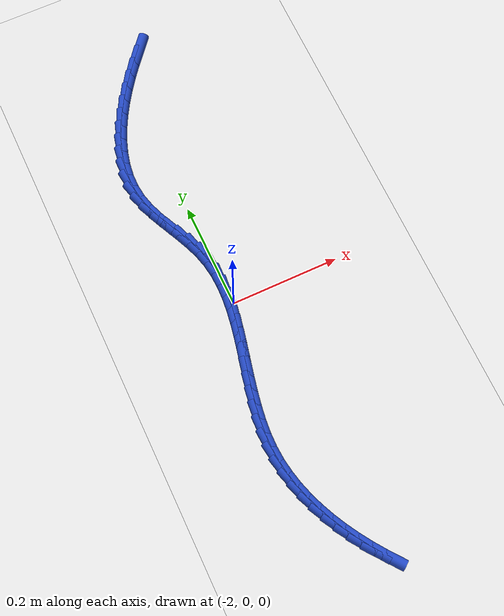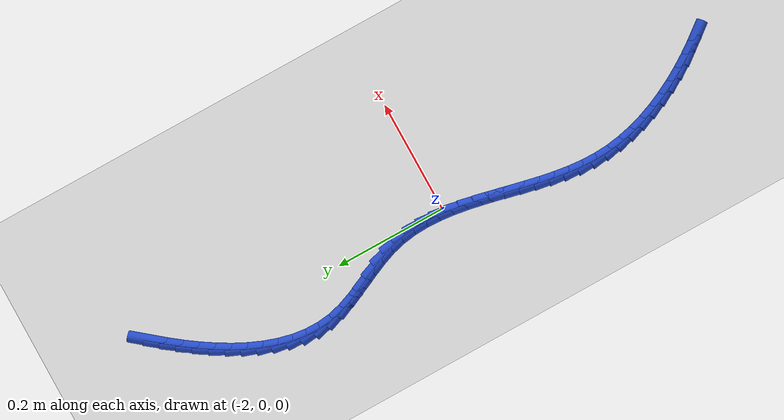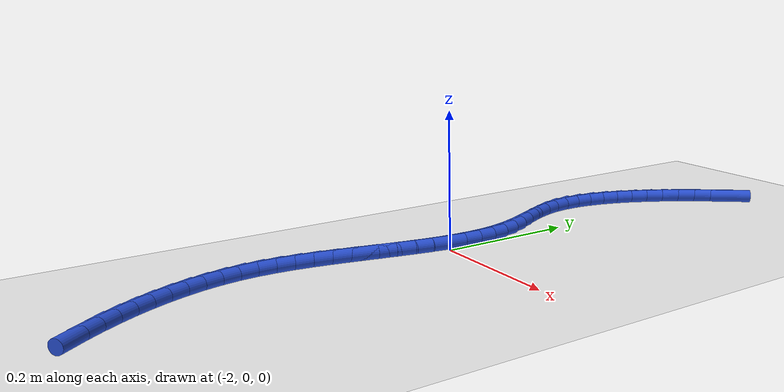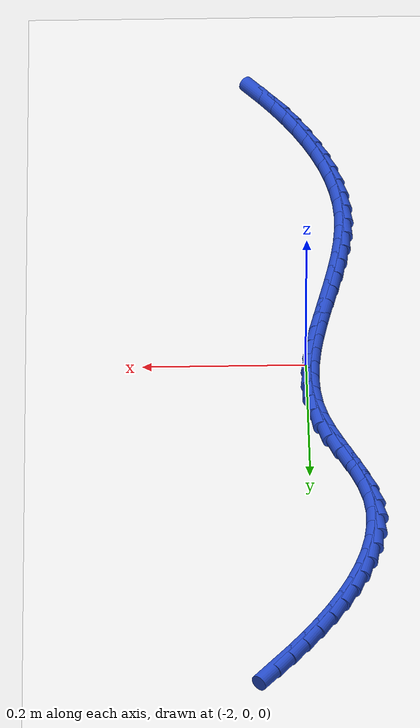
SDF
<sdf version="1.6">
 <world name="default">
  <model name="ground_plane">
   <static>1</static>
   <link name="link">
    <collision name="collision">
     <geometry><plane><normal>0 0 1</normal><size>100 100</size></plane></geometry>
     <surface><friction><ode><mu>100</mu><mu2>50</mu2></ode></friction></surface>
    </collision>
    <visual name="visual">
     <cast_shadows>0</cast_shadows>
     <geometry><plane><normal>0 0 1</normal><size>100 100</size></plane></geometry>
     <material>
      <script><uri>file://media/materials/scripts/gazebo.material</uri><name>Gazebo/WhiteGlow</name></script>
     </material>
    </visual>
   </link>
  </model>
  <model name="line">
   <link name="link_108">
    <pose>-1.9564512482983454 0.534389550413857 0.01 0 1.57 0.8852019934915449</pose>
    <collision name="collision">
     <geometry><cylinder><radius>0.01</radius><length>0.08</length></cylinder></geometry>
    </collision>
    <visual name="visual">
     <material>
      <script><name>Gazebo/Blue</name><uri>file://media/materials/scripts/gazebo.material</uri></script>
     </material>
     <geometry><cylinder><radius>0.01</radius><length>0.08</length></cylinder></geometry>
    </visual>
   </link>
   <link name="link_109">
    <pose>-1.9735837545025818 0.5134440441223386 0.01 0 1.57 0.9180072365667759</pose>
    <collision name="collision">
     <geometry><cylinder><radius>0.01</radius><length>0.08</length></cylinder></geometry>
    </collision>
    <visual name="visual">
     <material>
      <script><name>Gazebo/Blue</name><uri>file://media/materials/scripts/gazebo.material</uri></script>
     </material>
     <geometry><cylinder><radius>0.01</radius><length>0.08</length></cylinder></geometry>
    </visual>
   </link>
   <link name="link_110">
    <pose>-1.990241824545096 0.491657816225653 0.01 0 1.57 0.9555419687642975</pose>
    <collision name="collision">
     <geometry><cylinder><radius>0.01</radius><length>0.08</length></cylinder></geometry>
    </collision>
    <visual name="visual">
     <material>
      <script><name>Gazebo/Blue</name><uri>file://media/materials/scripts/gazebo.material</uri></script>
     </material>
     <geometry><cylinder><radius>0.01</radius><length>0.08</length></cylinder></geometry>
    </visual>
   </link>
   <link name="link_111">
    <pose>-2.006157741705944 0.46913854690241186 0.01 0 1.57 0.9986297483245608</pose>
    <collision name="collision">
     <geometry><cylinder><radius>0.01</radius><length>0.08</length></cylinder></geometry>
    </collision>
    <visual name="visual">
     <material>
      <script><name>Gazebo/Blue</name><uri>file://media/materials/scripts/gazebo.material</uri></script>
     </material>
     <geometry><cylinder><radius>0.01</radius><length>0.08</length></cylinder></geometry>
    </visual>
   </link>
   <link name="link_112">
    <pose>-2.021063411815679 0.44599415676241544 0.01 0 1.57 1.0482662910572789</pose>
    <collision name="collision">
     <geometry><cylinder><radius>0.01</radius><length>0.08</length></cylinder></geometry>
    </collision>
    <visual name="visual">
     <material>
      <script><name>Gazebo/Blue</name><uri>file://media/materials/scripts/gazebo.material</uri></script>
     </material>
     <geometry><cylinder><radius>0.01</radius><length>0.08</length></cylinder></geometry>
    </visual>
   </link>
   <link name="link_113">
    <pose>-2.0346907407048542 0.42233256641546396 0.01 0 1.57 1.105639036465883</pose>
    <collision name="collision">
     <geometry><cylinder><radius>0.01</radius><length>0.08</length></cylinder></geometry>
    </collision>
    <visual name="visual">
     <material>
      <script><name>Gazebo/Blue</name><uri>file://media/materials/scripts/gazebo.material</uri></script>
     </material>
     <geometry><cylinder><radius>0.01</radius><length>0.08</length></cylinder></geometry>
    </visual>
   </link>
   <link name="link_114">
    <pose>-2.0467716342040227 0.3982616964713582 0.01 0 1.57 1.1721214913534959</pose>
    <collision name="collision">
     <geometry><cylinder><radius>0.01</radius><length>0.08</length></cylinder></geometry>
    </collision>
    <visual name="visual">
     <material>
      <script><name>Gazebo/Blue</name><uri>file://media/materials/scripts/gazebo.material</uri></script>
     </material>
     <geometry><cylinder><radius>0.01</radius><length>0.08</length></cylinder></geometry>
    </visual>
   </link>
   <link name="link_115">
    <pose>-2.0570379981437394 0.3738894675398983 0.01 0 1.57 1.2492222079804776</pose>
    <collision name="collision">
     <geometry><cylinder><radius>0.01</radius><length>0.08</length></cylinder></geometry>
    </collision>
    <visual name="visual">
     <material>
      <script><name>Gazebo/Blue</name><uri>file://media/materials/scripts/gazebo.material</uri></script>
     </material>
     <geometry><cylinder><radius>0.01</radius><length>0.08</length></cylinder></geometry>
    </visual>
   </link>
   <link name="link_116">
    <pose>-2.0652217383545564 0.3493238002308857 0.01 0 1.57 1.338447441022226</pose>
    <collision name="collision">
     <geometry><cylinder><radius>0.01</radius><length>0.08</length></cylinder></geometry>
    </collision>
    <visual name="visual">
     <material>
      <script><name>Gazebo/Blue</name><uri>file://media/materials/scripts/gazebo.material</uri></script>
     </material>
     <geometry><cylinder><radius>0.01</radius><length>0.08</length></cylinder></geometry>
    </visual>
   </link>
   <link name="link_117">
    <pose>-2.071054760667026 0.3246726151541204 0.01 0 1.57 1.4410235091347026</pose>
    <collision name="collision">
     <geometry><cylinder><radius>0.01</radius><length>0.08</length></cylinder></geometry>
    </collision>
    <visual name="visual">
     <material>
      <script><name>Gazebo/Blue</name><uri>file://media/materials/scripts/gazebo.material</uri></script>
     </material>
     <geometry><cylinder><radius>0.01</radius><length>0.08</length></cylinder></geometry>
    </visual>
   </link>
   <link name="link_118">
    <pose>-2.0742689709117035 0.3000438329194027 0.01 0 1.57 1.5574369339276557</pose>
    <collision name="collision">
     <geometry><cylinder><radius>0.01</radius><length>0.08</length></cylinder></geometry>
    </collision>
    <visual name="visual">
     <material>
      <script><name>Gazebo/Blue</name><uri>file://media/materials/scripts/gazebo.material</uri></script>
     </material>
     <geometry><cylinder><radius>0.01</radius><length>0.08</length></cylinder></geometry>
    </visual>
   </link>
   <link name="link_119">
    <pose>-2.0745962749191413 0.27554537413653385 0.01 0 1.57 -1.4547629541926752</pose>
    <collision name="collision">
     <geometry><cylinder><radius>0.01</radius><length>0.08</length></cylinder></geometry>
    </collision>
    <visual name="visual">
     <material>
      <script><name>Gazebo/Blue</name><uri>file://media/materials/scripts/gazebo.material</uri></script>
     </material>
     <geometry><cylinder><radius>0.01</radius><length>0.08</length></cylinder></geometry>
    </visual>
   </link>
   <link name="link_120">
    <pose>-2.071768578519893 0.25128515941531415 0.01 0 1.57 -1.3194853662809674</pose>
    <collision name="collision">
     <geometry><cylinder><radius>0.01</radius><length>0.08</length></cylinder></geometry>
    </collision>
    <visual name="visual">
     <material>
      <script><name>Gazebo/Blue</name><uri>file://media/materials/scripts/gazebo.material</uri></script>
     </material>
     <geometry><cylinder><radius>0.01</radius><length>0.08</length></cylinder></geometry>
    </visual>
   </link>
   <link name="link_121">
    <pose>-2.06562428827721 0.22735309435226675 0.01 0 1.57 -1.2149839482500875</pose>
    <collision name="collision">
     <geometry><cylinder><radius>0.01</radius><length>0.08</length></cylinder></geometry>
    </collision>
    <visual name="visual">
     <material>
      <script><name>Gazebo/Blue</name><uri>file://media/materials/scripts/gazebo.material</uri></script>
     </material>
     <geometry><cylinder><radius>0.01</radius><length>0.08</length></cylinder></geometry>
    </visual>
   </link>
   <link name="link_122">
    <pose>-2.0568335076658695 0.20369839977560913 0.01 0 1.57 -1.1549087457809835</pose>
    <collision name="collision">
     <geometry><cylinder><radius>0.01</radius><length>0.08</length></cylinder></geometry>
    </collision>
    <visual name="visual">
     <material>
      <script><name>Gazebo/Blue</name><uri>file://media/materials/scripts/gazebo.material</uri></script>
     </material>
     <geometry><cylinder><radius>0.01</radius><length>0.08</length></cylinder></geometry>
    </visual>
   </link>
   <link name="link_123">
    <pose>-2.046457301544594 0.1802041638744277 0.01 0 1.57 -1.1357648729999337</pose>
    <collision name="collision">
     <geometry><cylinder><radius>0.01</radius><length>0.08</length></cylinder></geometry>
    </collision>
    <visual name="visual">
     <material>
      <script><name>Gazebo/Blue</name><uri>file://media/materials/scripts/gazebo.material</uri></script>
     </material>
     <geometry><cylinder><radius>0.01</radius><length>0.08</length></cylinder></geometry>
    </visual>
   </link>
   <link name="link_124">
    <pose>-2.035559004134413 0.1567530909663462 0.01 0 1.57 -1.1560770759768586</pose>
    <collision name="collision">
     <geometry><cylinder><radius>0.01</radius><length>0.08</length></cylinder></geometry>
    </collision>
    <visual name="visual">
     <material>
      <script><name>Gazebo/Blue</name><uri>file://media/materials/scripts/gazebo.material</uri></script>
     </material>
     <geometry><cylinder><radius>0.01</radius><length>0.08</length></cylinder></geometry>
    </visual>
   </link>
   <link name="link_125">
    <pose>-2.0252019496563585 0.1332278853689876 0.01 0 1.57 -1.2172577059735188</pose>
    <collision name="collision">
     <geometry><cylinder><radius>0.01</radius><length>0.08</length></cylinder></geometry>
    </collision>
    <visual name="visual">
     <material>
      <script><name>Gazebo/Blue</name><uri>file://media/materials/scripts/gazebo.material</uri></script>
     </material>
     <geometry><cylinder><radius>0.01</radius><length>0.08</length></cylinder></geometry>
    </visual>
   </link>
   <link name="link_126">
    <pose>-2.016449472331458 0.10951125139997464 0.01 0 1.57 -1.319133139798496</pose>
    <collision name="collision">
     <geometry><cylinder><radius>0.01</radius><length>0.08</length></cylinder></geometry>
    </collision>
    <visual name="visual">
     <material>
      <script><name>Gazebo/Blue</name><uri>file://media/materials/scripts/gazebo.material</uri></script>
     </material>
     <geometry><cylinder><radius>0.01</radius><length>0.08</length></cylinder></geometry>
    </visual>
   </link>
   <link name="link_127">
    <pose>-2.010274686111172 0.08549552693745535 0.01 0 1.57 -1.42909204294445</pose>
    <collision name="collision">
     <geometry><cylinder><radius>0.01</radius><length>0.08</length></cylinder></geometry>
    </collision>
    <visual name="visual">
     <material>
      <script><name>Gazebo/Blue</name><uri>file://media/materials/scripts/gazebo.material</uri></script>
     </material>
     <geometry><cylinder><radius>0.01</radius><length>0.08</length></cylinder></geometry>
    </visual>
   </link>
   <link name="link_128">
    <pose>-2.0068034706467848 0.06116351603694162 0.01 0 1.57 -1.525906575291618</pose>
    <collision name="collision">
     <geometry><cylinder><radius>0.01</radius><length>0.08</length></cylinder></geometry>
    </collision>
    <visual name="visual">
     <material>
      <script><name>Gazebo/Blue</name><uri>file://media/materials/scripts/gazebo.material</uri></script>
     </material>
     <geometry><cylinder><radius>0.01</radius><length>0.08</length></cylinder></geometry>
    </visual>
   </link>
   <link name="link_129">
    <pose>-2.005697723935699 0.03654756589282154 0.01 0 1.57 1.533941909374905</pose>
    <collision name="collision">
     <geometry><cylinder><radius>0.01</radius><length>0.08</length></cylinder></geometry>
    </collision>
    <visual name="visual">
     <material>
      <script><name>Gazebo/Blue</name><uri>file://media/materials/scripts/gazebo.material</uri></script>
     </material>
     <geometry><cylinder><radius>0.01</radius><length>0.08</length></cylinder></geometry>
    </visual>
   </link>
   <link name="link_130">
    <pose>-2.0066145991962947 0.011680530338580093 0.01 0 1.57 1.46765071165725</pose>
    <collision name="collision">
     <geometry><cylinder><radius>0.01</radius><length>0.08</length></cylinder></geometry>
    </collision>
    <visual name="visual">
     <material>
      <script><name>Gazebo/Blue</name><uri>file://media/materials/scripts/gazebo.material</uri></script>
     </material>
     <geometry><cylinder><radius>0.01</radius><length>0.08</length></cylinder></geometry>
    </visual>
   </link>
   <link name="link_131">
    <pose>-2.0092112496469534 -0.013404736792297763 0.01 0 1.57 1.4163774966633886</pose>
    <collision name="collision">
     <geometry><cylinder><radius>0.01</radius><length>0.08</length></cylinder></geometry>
    </collision>
    <visual name="visual">
     <material>
      <script><name>Gazebo/Blue</name><uri>file://media/materials/scripts/gazebo.material</uri></script>
     </material>
     <geometry><cylinder><radius>0.01</radius><length>0.08</length></cylinder></geometry>
    </visual>
   </link>
   <link name="link_132">
    <pose>-2.0131448285060536 -0.038675381666327065 0.01 0 1.57 1.3793446951557973</pose>
    <collision name="collision">
     <geometry><cylinder><radius>0.01</radius><length>0.08</length></cylinder></geometry>
    </collision>
    <visual name="visual">
     <material>
      <script><name>Gazebo/Blue</name><uri>file://media/materials/scripts/gazebo.material</uri></script>
     </material>
     <geometry><cylinder><radius>0.01</radius><length>0.08</length></cylinder></geometry>
    </visual>
   </link>
   <link name="link_133">
    <pose>-2.018072488991976 -0.0640985504500235 0.01 0 1.57 1.3557599885949758</pose>
    <collision name="collision">
     <geometry><cylinder><radius>0.01</radius><length>0.08</length></cylinder></geometry>
    </collision>
    <visual name="visual">
     <material>
      <script><name>Gazebo/Blue</name><uri>file://media/materials/scripts/gazebo.material</uri></script>
     </material>
     <geometry><cylinder><radius>0.01</radius><length>0.08</length></cylinder></geometry>
    </visual>
   </link>
   <link name="link_134">
    <pose>-2.023651384323101 -0.0896413893099007 0.01 0 1.57 1.3450072655882854</pose>
    <collision name="collision">
     <geometry><cylinder><radius>0.01</radius><length>0.08</length></cylinder></geometry>
    </collision>
    <visual name="visual">
     <material>
      <script><name>Gazebo/Blue</name><uri>file://media/materials/scripts/gazebo.material</uri></script>
     </material>
     <geometry><cylinder><radius>0.01</radius><length>0.08</length></cylinder></geometry>
    </visual>
   </link>
   <link name="link_135">
    <pose>-2.029538667717808 -0.11527104441247438 0.01 0 1.57 1.3467408039945723</pose>
    <collision name="collision">
     <geometry><cylinder><radius>0.01</radius><length>0.08</length></cylinder></geometry>
    </collision>
    <visual name="visual">
     <material>
      <script><name>Gazebo/Blue</name><uri>file://media/materials/scripts/gazebo.material</uri></script>
     </material>
     <geometry><cylinder><radius>0.01</radius><length>0.08</length></cylinder></geometry>
    </visual>
   </link>
   <link name="link_136">
    <pose>-2.035391492394478 -0.1409546619242596 0.01 0 1.57 1.3609172332642323</pose>
    <collision name="collision">
     <geometry><cylinder><radius>0.01</radius><length>0.08</length></cylinder></geometry>
    </collision>
    <visual name="visual">
     <material>
      <script><name>Gazebo/Blue</name><uri>file://media/materials/scripts/gazebo.material</uri></script>
     </material>
     <geometry><cylinder><radius>0.01</radius><length>0.08</length></cylinder></geometry>
    </visual>
   </link>
   <link name="link_137">
    <pose>-2.04086701157149 -0.16665938801177133 0.01 0 1.57 1.3877830693945385</pose>
    <collision name="collision">
     <geometry><cylinder><radius>0.01</radius><length>0.08</length></cylinder></geometry>
    </collision>
    <visual name="visual">
     <material>
      <script><name>Gazebo/Blue</name><uri>file://media/materials/scripts/gazebo.material</uri></script>
     </material>
     <geometry><cylinder><radius>0.01</radius><length>0.08</length></cylinder></geometry>
    </visual>
   </link>
   <link name="link_138">
    <pose>-2.0456223784672245 -0.19235236884152462 0.01 0 1.57 1.427817615861907</pose>
    <collision name="collision">
     <geometry><cylinder><radius>0.01</radius><length>0.08</length></cylinder></geometry>
    </collision>
    <visual name="visual">
     <material>
      <script><name>Gazebo/Blue</name><uri>file://media/materials/scripts/gazebo.material</uri></script>
     </material>
     <geometry><cylinder><radius>0.01</radius><length>0.08</length></cylinder></geometry>
    </visual>
   </link>
   <link name="link_139">
    <pose>-2.0493147463000616 -0.21800075058003443 0.01 0 1.57 1.4816147040707273</pose>
    <collision name="collision">
     <geometry><cylinder><radius>0.01</radius><length>0.08</length></cylinder></geometry>
    </collision>
    <visual name="visual">
     <material>
      <script><name>Gazebo/Blue</name><uri>file://media/materials/scripts/gazebo.material</uri></script>
     </material>
     <geometry><cylinder><radius>0.01</radius><length>0.08</length></cylinder></geometry>
    </visual>
   </link>
   <link name="link_140">
    <pose>-2.051601268288382 -0.24357167939381666 0.01 0 1.57 1.5496755000798383</pose>
    <collision name="collision">
     <geometry><cylinder><radius>0.01</radius><length>0.08</length></cylinder></geometry>
    </collision>
    <visual name="visual">
     <material>
      <script><name>Gazebo/Blue</name><uri>file://media/materials/scripts/gazebo.material</uri></script>
     </material>
     <geometry><cylinder><radius>0.01</radius><length>0.08</length></cylinder></geometry>
    </visual>
   </link>
   <link name="link_141">
    <pose>-2.0521390976505653 -0.2690323014493848 0.01 0 1.57 -1.5103524400342117</pose>
    <collision name="collision">
     <geometry><cylinder><radius>0.01</radius><length>0.08</length></cylinder></geometry>
    </collision>
    <visual name="visual">
     <material>
      <script><name>Gazebo/Blue</name><uri>file://media/materials/scripts/gazebo.material</uri></script>
     </material>
     <geometry><cylinder><radius>0.01</radius><length>0.08</length></cylinder></geometry>
    </visual>
   </link>
   <link name="link_142">
    <pose>-2.050607041175215 -0.29434818254152106 0.01 0 1.57 -1.4267343699049857</pose>
    <collision name="collision">
     <geometry><cylinder><radius>0.01</radius><length>0.08</length></cylinder></geometry>
    </collision>
    <visual name="visual">
     <material>
      <script><name>Gazebo/Blue</name><uri>file://media/materials/scripts/gazebo.material</uri></script>
     </material>
     <geometry><cylinder><radius>0.01</radius><length>0.08</length></cylinder></geometry>
    </visual>
   </link>
   <link name="link_143">
    <pose>-2.0469634970321646 -0.31946448266997274 0.01 0 1.57 -1.3490473873683373</pose>
    <collision name="collision">
     <geometry><cylinder><radius>0.01</radius><length>0.08</length></cylinder></geometry>
    </collision>
    <visual name="visual">
     <material>
      <script><name>Gazebo/Blue</name><uri>file://media/materials/scripts/gazebo.material</uri></script>
     </material>
     <geometry><cylinder><radius>0.01</radius><length>0.08</length></cylinder></geometry>
    </visual>
   </link>
   <link name="link_144">
    <pose>-2.041361425300791 -0.3443121618601157 0.01 0 1.57 -1.2774399916565877</pose>
    <collision name="collision">
     <geometry><cylinder><radius>0.01</radius><length>0.08</length></cylinder></geometry>
    </collision>
    <visual name="visual">
     <material>
      <script><name>Gazebo/Blue</name><uri>file://media/materials/scripts/gazebo.material</uri></script>
     </material>
     <geometry><cylinder><radius>0.01</radius><length>0.08</length></cylinder></geometry>
    </visual>
   </link>
   <link name="link_145">
    <pose>-2.0339577297899574 -0.3688218923067957 0.01 0 1.57 -1.211662134153893</pose>
    <collision name="collision">
     <geometry><cylinder><radius>0.01</radius><length>0.08</length></cylinder></geometry>
    </collision>
    <visual name="visual">
     <material>
      <script><name>Gazebo/Blue</name><uri>file://media/materials/scripts/gazebo.material</uri></script>
     </material>
     <geometry><cylinder><radius>0.01</radius><length>0.08</length></cylinder></geometry>
    </visual>
   </link>
   <link name="link_146">
    <pose>-2.0249093143085277 -0.3929243462048582 0.01 0 1.57 -1.1513054554410758</pose>
    <collision name="collision">
     <geometry><cylinder><radius>0.01</radius><length>0.08</length></cylinder></geometry>
    </collision>
    <visual name="visual">
     <material>
      <script><name>Gazebo/Blue</name><uri>file://media/materials/scripts/gazebo.material</uri></script>
     </material>
     <geometry><cylinder><radius>0.01</radius><length>0.08</length></cylinder></geometry>
    </visual>
   </link>
   <link name="link_147">
    <pose>-2.0143730826653643 -0.41655019574914903 0.01 0 1.57 -1.095872189465975</pose>
    <collision name="collision">
     <geometry><cylinder><radius>0.01</radius><length>0.08</length></cylinder></geometry>
    </collision>
    <visual name="visual">
     <material>
      <script><name>Gazebo/Blue</name><uri>file://media/materials/scripts/gazebo.material</uri></script>
     </material>
     <geometry><cylinder><radius>0.01</radius><length>0.08</length></cylinder></geometry>
    </visual>
   </link>
   <link name="link_148">
    <pose>-2.002505938669331 -0.43963011313451367 0.01 0 1.57 -1.0448245276797776</pose>
    <collision name="collision">
     <geometry><cylinder><radius>0.01</radius><length>0.08</length></cylinder></geometry>
    </collision>
    <visual name="visual">
     <material>
      <script><name>Gazebo/Blue</name><uri>file://media/materials/scripts/gazebo.material</uri></script>
     </material>
     <geometry><cylinder><radius>0.01</radius><length>0.08</length></cylinder></geometry>
    </visual>
   </link>
   <link name="link_149">
    <pose>-1.98946478612929 -0.46209477055579845 0.01 0 1.57 -0.9976162632043677</pose>
    <collision name="collision">
     <geometry><cylinder><radius>0.01</radius><length>0.08</length></cylinder></geometry>
    </collision>
    <visual name="visual">
     <material>
      <script><name>Gazebo/Blue</name><uri>file://media/materials/scripts/gazebo.material</uri></script>
     </material>
     <geometry><cylinder><radius>0.01</radius><length>0.08</length></cylinder></geometry>
    </visual>
   </link>
   <link name="link_150">
    <pose>-1.9754065288541056 -0.48387484020784766 0.01 0 1.57 -0.9537377459988633</pose>
    <collision name="collision">
     <geometry><cylinder><radius>0.01</radius><length>0.08</length></cylinder></geometry>
    </collision>
    <visual name="visual">
     <material>
      <script><name>Gazebo/Blue</name><uri>file://media/materials/scripts/gazebo.material</uri></script>
     </material>
     <geometry><cylinder><radius>0.01</radius><length>0.08</length></cylinder></geometry>
    </visual>
   </link>
   <link name="link_151">
    <pose>-1.9604856115783622 -0.504905686517874 0.01 0 1.57 -0.9132810343685495</pose>
    <collision name="collision">
     <geometry><cylinder><radius>0.01</radius><length>0.08</length></cylinder></geometry>
    </collision>
    <visual name="visual">
     <material>
      <script><name>Gazebo/Blue</name><uri>file://media/materials/scripts/gazebo.material</uri></script>
     </material>
     <geometry><cylinder><radius>0.01</radius><length>0.08</length></cylinder></geometry>
    </visual>
   </link>
  </model>
 </world>
</sdf>
